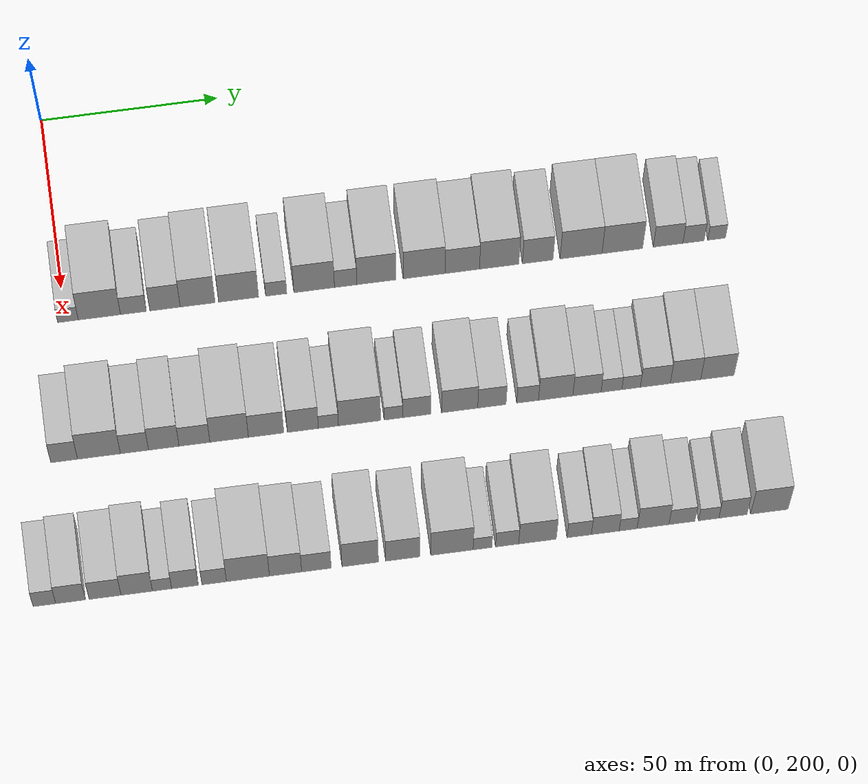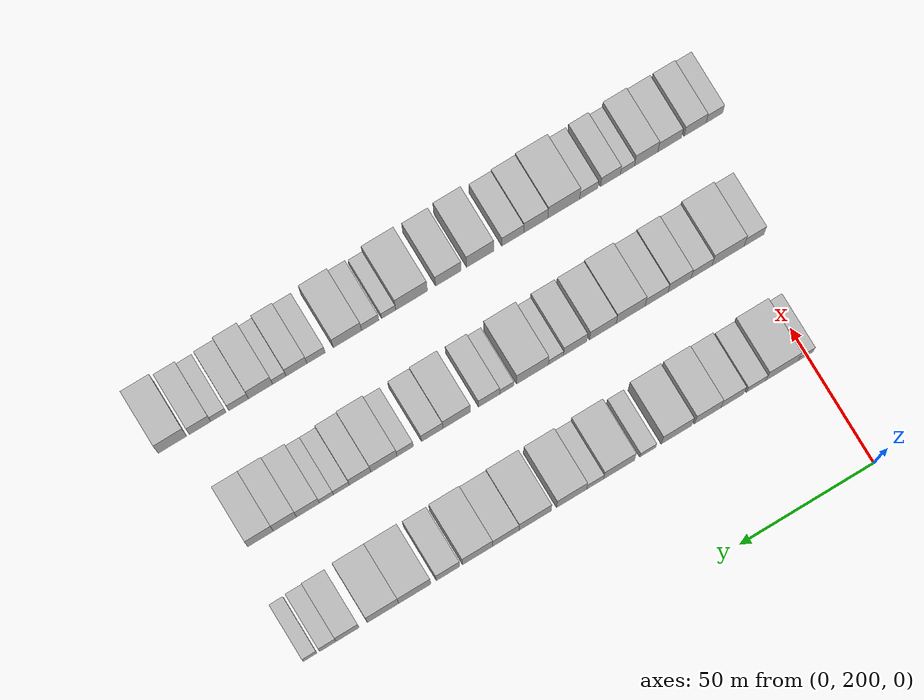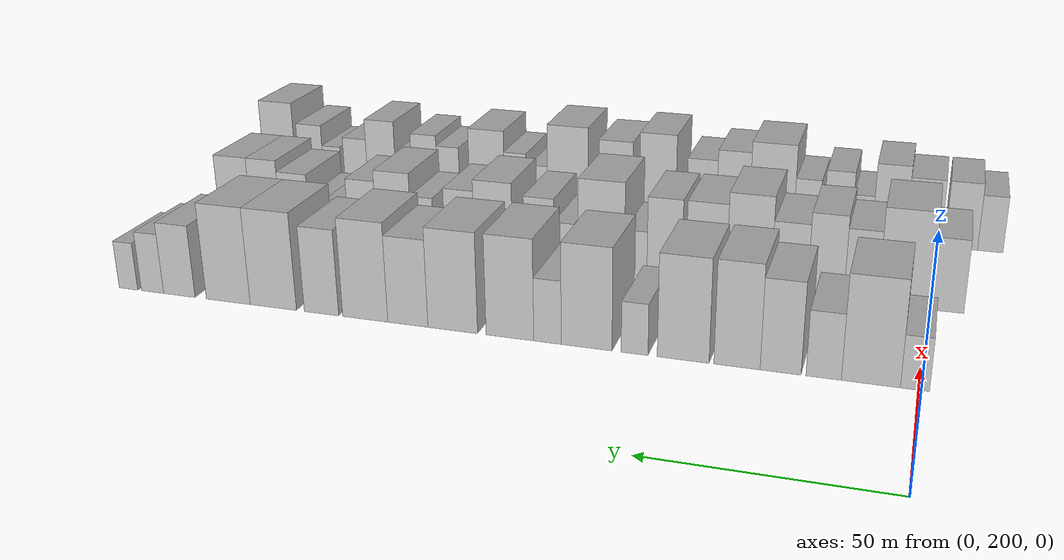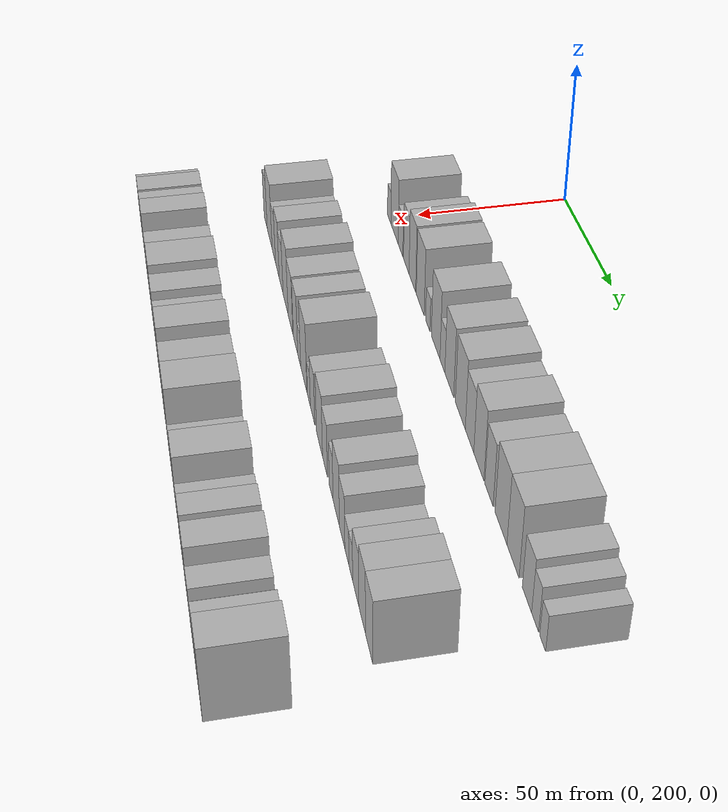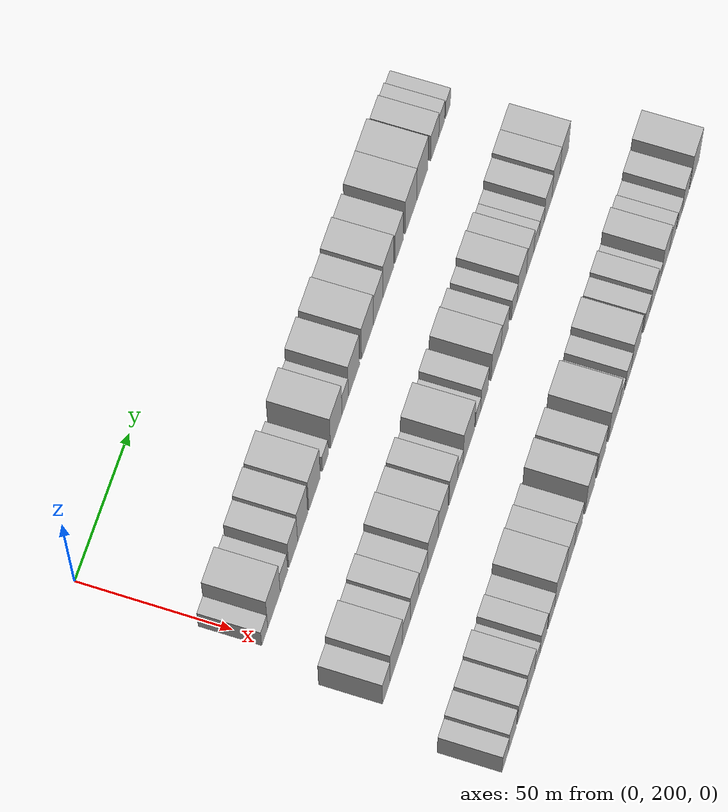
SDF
<sdf version="1.6">
 <world name="default">
  <model name="building_63">
   <static>1</static>
   <pose>50.0000 200.7948 0 0.000000 0.000000 0.000000</pose>
   <link name="link">
    <pose>0 0 6.00 0 0 0</pose>
    <collision name="collision"><geometry><box><size>20.0000 5.7654 12.0000</size></box></geometry></collision>
    <visual name="visual">
     <cast_shadows>0</cast_shadows>
     <geometry><box><size>20.0000 5.7654 12.0000</size></box></geometry>
     <material>
      <script>
       <uri>model://HANNAS_wall/materials/scripts</uri>
       <uri>model://HANNAS_wall/materials/textures</uri>
       <name>vrc/HANNAS_wall</name>
      </script>
     </material>
    </visual>
   </link>
  </model>
  <model name="building_64">
   <static>1</static>
   <pose>50.0000 209.6033 0 0.000000 0.000000 0.000000</pose>
   <link name="link">
    <pose>0 0 12.00 0 0 0</pose>
    <collision name="collision"><geometry><box><size>20.0000 11.8515 24.0000</size></box></geometry></collision>
    <visual name="visual">
     <cast_shadows>0</cast_shadows>
     <geometry><box><size>20.0000 11.8515 24.0000</size></box></geometry>
     <material>
      <script>
       <uri>model://HANNAS_wall/materials/scripts</uri>
       <uri>model://HANNAS_wall/materials/textures</uri>
       <name>vrc/HANNAS_wall</name>
      </script>
     </material>
    </visual>
   </link>
  </model>
  <model name="building_65">
   <static>1</static>
   <pose>50.0000 219.1424 0 0.000000 0.000000 0.000000</pose>
   <link name="link">
    <pose>0 0 7.50 0 0 0</pose>
    <collision name="collision"><geometry><box><size>20.0000 7.2268 15.0000</size></box></geometry></collision>
    <visual name="visual">
     <cast_shadows>0</cast_shadows>
     <geometry><box><size>20.0000 7.2268 15.0000</size></box></geometry>
     <material>
      <script>
       <uri>model://HANNAS_wall/materials/scripts</uri>
       <uri>model://HANNAS_wall/materials/textures</uri>
       <name>vrc/HANNAS_wall</name>
      </script>
     </material>
    </visual>
   </link>
  </model>
  <model name="building_66">
   <static>1</static>
   <pose>50.0000 228.0161 0 0.000000 0.000000 0.000000</pose>
   <link name="link">
    <pose>0 0 10.50 0 0 0</pose>
    <collision name="collision"><geometry><box><size>20.0000 8.5204 21.0000</size></box></geometry></collision>
    <visual name="visual">
     <cast_shadows>0</cast_shadows>
     <geometry><box><size>20.0000 8.5204 21.0000</size></box></geometry>
     <material>
      <script>
       <uri>model://HANNAS_wall/materials/scripts</uri>
       <uri>model://HANNAS_wall/materials/textures</uri>
       <name>vrc/HANNAS_wall</name>
      </script>
     </material>
    </visual>
   </link>
  </model>
  <model name="building_67">
   <static>1</static>
   <pose>50.0000 237.1684 0 0.000000 0.000000 0.000000</pose>
   <link name="link">
    <pose>0 0 12.00 0 0 0</pose>
    <collision name="collision"><geometry><box><size>20.0000 9.7842 24.0000</size></box></geometry></collision>
    <visual name="visual">
     <cast_shadows>0</cast_shadows>
     <geometry><box><size>20.0000 9.7842 24.0000</size></box></geometry>
     <material>
      <script>
       <uri>model://HANNAS_wall/materials/scripts</uri>
       <uri>model://HANNAS_wall/materials/textures</uri>
       <name>vrc/HANNAS_wall</name>
      </script>
     </material>
    </visual>
   </link>
  </model>
  <model name="building_68">
   <static>1</static>
   <pose>50.0000 248.6716 0 0.000000 0.000000 0.000000</pose>
   <link name="link">
    <pose>0 0 12.00 0 0 0</pose>
    <collision name="collision"><geometry><box><size>20.0000 11.2223 24.0000</size></box></geometry></collision>
    <visual name="visual">
     <cast_shadows>0</cast_shadows>
     <geometry><box><size>20.0000 11.2223 24.0000</size></box></geometry>
     <material>
      <script>
       <uri>model://HANNAS_wall/materials/scripts</uri>
       <uri>model://HANNAS_wall/materials/textures</uri>
       <name>vrc/HANNAS_wall</name>
      </script>
     </material>
    </visual>
   </link>
  </model>
  <model name="building_69">
   <static>1</static>
   <pose>50.0000 259.2494 0 0.000000 0.000000 0.000000</pose>
   <link name="link">
    <pose>0 0 6.00 0 0 0</pose>
    <collision name="collision"><geometry><box><size>20.0000 5.9333 12.0000</size></box></geometry></collision>
    <visual name="visual">
     <cast_shadows>0</cast_shadows>
     <geometry><box><size>20.0000 5.9333 12.0000</size></box></geometry>
     <material>
      <script>
       <uri>model://HANNAS_wall/materials/scripts</uri>
       <uri>model://HANNAS_wall/materials/textures</uri>
       <name>vrc/HANNAS_wall</name>
      </script>
     </material>
    </visual>
   </link>
  </model>
  <model name="building_70">
   <static>1</static>
   <pose>50.0000 269.9238 0 0.000000 0.000000 0.000000</pose>
   <link name="link">
    <pose>0 0 12.00 0 0 0</pose>
    <collision name="collision"><geometry><box><size>20.0000 11.4154 24.0000</size></box></geometry></collision>
    <visual name="visual">
     <cast_shadows>0</cast_shadows>
     <geometry><box><size>20.0000 11.4154 24.0000</size></box></geometry>
     <material>
      <script>
       <uri>model://HANNAS_wall/materials/scripts</uri>
       <uri>model://HANNAS_wall/materials/textures</uri>
       <name>vrc/HANNAS_wall</name>
      </script>
     </material>
    </visual>
   </link>
  </model>
  <model name="building_71">
   <static>1</static>
   <pose>50.0000 278.7712 0 0.000000 0.000000 0.000000</pose>
   <link name="link">
    <pose>0 0 7.50 0 0 0</pose>
    <collision name="collision"><geometry><box><size>20.0000 6.2793 15.0000</size></box></geometry></collision>
    <visual name="visual">
     <cast_shadows>0</cast_shadows>
     <geometry><box><size>20.0000 6.2793 15.0000</size></box></geometry>
     <material>
      <script>
       <uri>model://HANNAS_wall/materials/scripts</uri>
       <uri>model://HANNAS_wall/materials/textures</uri>
       <name>vrc/HANNAS_wall</name>
      </script>
     </material>
    </visual>
   </link>
  </model>
  <model name="building_72">
   <static>1</static>
   <pose>50.0000 287.4389 0 0.000000 0.000000 0.000000</pose>
   <link name="link">
    <pose>0 0 12.00 0 0 0</pose>
    <collision name="collision"><geometry><box><size>20.0000 11.0561 24.0000</size></box></geometry></collision>
    <visual name="visual">
     <cast_shadows>0</cast_shadows>
     <geometry><box><size>20.0000 11.0561 24.0000</size></box></geometry>
     <material>
      <script>
       <uri>model://HANNAS_wall/materials/scripts</uri>
       <uri>model://HANNAS_wall/materials/textures</uri>
       <name>vrc/HANNAS_wall</name>
      </script>
     </material>
    </visual>
   </link>
  </model>
  <model name="building_73">
   <static>1</static>
   <pose>50.0000 300.8716 0 0.000000 0.000000 0.000000</pose>
   <link name="link">
    <pose>0 0 12.00 0 0 0</pose>
    <collision name="collision"><geometry><box><size>20.0000 11.8092 24.0000</size></box></geometry></collision>
    <visual name="visual">
     <cast_shadows>0</cast_shadows>
     <geometry><box><size>20.0000 11.8092 24.0000</size></box></geometry>
     <material>
      <script>
       <uri>model://HANNAS_wall/materials/scripts</uri>
       <uri>model://HANNAS_wall/materials/textures</uri>
       <name>vrc/HANNAS_wall</name>
      </script>
     </material>
    </visual>
   </link>
  </model>
  <model name="building_74">
   <static>1</static>
   <pose>50.0000 311.6322 0 0.000000 0.000000 0.000000</pose>
   <link name="link">
    <pose>0 0 10.50 0 0 0</pose>
    <collision name="collision"><geometry><box><size>20.0000 9.7121 21.0000</size></box></geometry></collision>
    <visual name="visual">
     <cast_shadows>0</cast_shadows>
     <geometry><box><size>20.0000 9.7121 21.0000</size></box></geometry>
     <material>
      <script>
       <uri>model://HANNAS_wall/materials/scripts</uri>
       <uri>model://HANNAS_wall/materials/textures</uri>
       <name>vrc/HANNAS_wall</name>
      </script>
     </material>
    </visual>
   </link>
  </model>
  <model name="building_75">
   <static>1</static>
   <pose>50.0000 322.0391 0 0.000000 0.000000 0.000000</pose>
   <link name="link">
    <pose>0 0 12.00 0 0 0</pose>
    <collision name="collision"><geometry><box><size>20.0000 11.1015 24.0000</size></box></geometry></collision>
    <visual name="visual">
     <cast_shadows>0</cast_shadows>
     <geometry><box><size>20.0000 11.1015 24.0000</size></box></geometry>
     <material>
      <script>
       <uri>model://HANNAS_wall/materials/scripts</uri>
       <uri>model://HANNAS_wall/materials/textures</uri>
       <name>vrc/HANNAS_wall</name>
      </script>
     </material>
    </visual>
   </link>
  </model>
  <model name="building_76">
   <static>1</static>
   <pose>50.0000 332.9055 0 0.000000 0.000000 0.000000</pose>
   <link name="link">
    <pose>0 0 10.50 0 0 0</pose>
    <collision name="collision"><geometry><box><size>20.0000 8.6314 21.0000</size></box></geometry></collision>
    <visual name="visual">
     <cast_shadows>0</cast_shadows>
     <geometry><box><size>20.0000 8.6314 21.0000</size></box></geometry>
     <material>
      <script>
       <uri>model://HANNAS_wall/materials/scripts</uri>
       <uri>model://HANNAS_wall/materials/textures</uri>
       <name>vrc/HANNAS_wall</name>
      </script>
     </material>
    </visual>
   </link>
  </model>
  <model name="building_77">
   <static>1</static>
   <pose>50.0000 345.1486 0 0.000000 0.000000 0.000000</pose>
   <link name="link">
    <pose>0 0 12.00 0 0 0</pose>
    <collision name="collision"><geometry><box><size>20.0000 11.8547 24.0000</size></box></geometry></collision>
    <visual name="visual">
     <cast_shadows>0</cast_shadows>
     <geometry><box><size>20.0000 11.8547 24.0000</size></box></geometry>
     <material>
      <script>
       <uri>model://HANNAS_wall/materials/scripts</uri>
       <uri>model://HANNAS_wall/materials/textures</uri>
       <name>vrc/HANNAS_wall</name>
      </script>
     </material>
    </visual>
   </link>
  </model>
  <model name="building_78">
   <static>1</static>
   <pose>50.0000 356.8210 0 0.000000 0.000000 0.000000</pose>
   <link name="link">
    <pose>0 0 12.00 0 0 0</pose>
    <collision name="collision"><geometry><box><size>20.0000 11.4901 24.0000</size></box></geometry></collision>
    <visual name="visual">
     <cast_shadows>0</cast_shadows>
     <geometry><box><size>20.0000 11.4901 24.0000</size></box></geometry>
     <material>
      <script>
       <uri>model://HANNAS_wall/materials/scripts</uri>
       <uri>model://HANNAS_wall/materials/textures</uri>
       <name>vrc/HANNAS_wall</name>
      </script>
     </material>
    </visual>
   </link>
  </model>
  <model name="building_79">
   <static>1</static>
   <pose>50.0000 369.7659 0 0.000000 0.000000 0.000000</pose>
   <link name="link">
    <pose>0 0 9.00 0 0 0</pose>
    <collision name="collision"><geometry><box><size>20.0000 8.3997 18.0000</size></box></geometry></collision>
    <visual name="visual">
     <cast_shadows>0</cast_shadows>
     <geometry><box><size>20.0000 8.3997 18.0000</size></box></geometry>
     <material>
      <script>
       <uri>model://HANNAS_wall/materials/scripts</uri>
       <uri>model://HANNAS_wall/materials/textures</uri>
       <name>vrc/HANNAS_wall</name>
      </script>
     </material>
    </visual>
   </link>
  </model>
  <model name="building_80">
   <static>1</static>
   <pose>50.0000 376.9768 0 0.000000 0.000000 0.000000</pose>
   <link name="link">
    <pose>0 0 7.50 0 0 0</pose>
    <collision name="collision"><geometry><box><size>20.0000 6.0222 15.0000</size></box></geometry></collision>
    <visual name="visual">
     <cast_shadows>0</cast_shadows>
     <geometry><box><size>20.0000 6.0222 15.0000</size></box></geometry>
     <material>
      <script>
       <uri>model://HANNAS_wall/materials/scripts</uri>
       <uri>model://HANNAS_wall/materials/textures</uri>
       <name>vrc/HANNAS_wall</name>
      </script>
     </material>
    </visual>
   </link>
  </model>
  <model name="building_81">
   <static>1</static>
   <pose>50.0000 383.5068 0 0.000000 0.000000 0.000000</pose>
   <link name="link">
    <pose>0 0 6.00 0 0 0</pose>
    <collision name="collision"><geometry><box><size>20.0000 5.0378 12.0000</size></box></geometry></collision>
    <visual name="visual">
     <cast_shadows>0</cast_shadows>
     <geometry><box><size>20.0000 5.0378 12.0000</size></box></geometry>
     <material>
      <script>
       <uri>model://HANNAS_wall/materials/scripts</uri>
       <uri>model://HANNAS_wall/materials/textures</uri>
       <name>vrc/HANNAS_wall</name>
      </script>
     </material>
    </visual>
   </link>
  </model>
  <model name="building_144">
   <static>1</static>
   <pose>90.0000 195.2468 0 0.000000 0.000000 0.000000</pose>
   <link name="link">
    <pose>0 0 9.00 0 0 0</pose>
    <collision name="collision"><geometry><box><size>20.0000 7.4434 18.0000</size></box></geometry></collision>
    <visual name="visual">
     <cast_shadows>0</cast_shadows>
     <geometry><box><size>20.0000 7.4434 18.0000</size></box></geometry>
     <material>
      <script>
       <uri>model://HANNAS_wall/materials/scripts</uri>
       <uri>model://HANNAS_wall/materials/textures</uri>
       <name>vrc/HANNAS_wall</name>
      </script>
     </material>
    </visual>
   </link>
  </model>
  <model name="building_145">
   <static>1</static>
   <pose>90.0000 204.9188 0 0.000000 0.000000 0.000000</pose>
   <link name="link">
    <pose>0 0 12.00 0 0 0</pose>
    <collision name="collision"><geometry><box><size>20.0000 11.9006 24.0000</size></box></geometry></collision>
    <visual name="visual">
     <cast_shadows>0</cast_shadows>
     <geometry><box><size>20.0000 11.9006 24.0000</size></box></geometry>
     <material>
      <script>
       <uri>model://HANNAS_wall/materials/scripts</uri>
       <uri>model://HANNAS_wall/materials/textures</uri>
       <name>vrc/HANNAS_wall</name>
      </script>
     </material>
    </visual>
   </link>
  </model>
  <model name="building_146">
   <static>1</static>
   <pose>90.0000 214.7822 0 0.000000 0.000000 0.000000</pose>
   <link name="link">
    <pose>0 0 9.00 0 0 0</pose>
    <collision name="collision"><geometry><box><size>20.0000 7.8262 18.0000</size></box></geometry></collision>
    <visual name="visual">
     <cast_shadows>0</cast_shadows>
     <geometry><box><size>20.0000 7.8262 18.0000</size></box></geometry>
     <material>
      <script>
       <uri>model://HANNAS_wall/materials/scripts</uri>
       <uri>model://HANNAS_wall/materials/textures</uri>
       <name>vrc/HANNAS_wall</name>
      </script>
     </material>
    </visual>
   </link>
  </model>
  <model name="building_147">
   <static>1</static>
   <pose>90.0000 222.9404 0 0.000000 0.000000 0.000000</pose>
   <link name="link">
    <pose>0 0 10.50 0 0 0</pose>
    <collision name="collision"><geometry><box><size>20.0000 8.4902 21.0000</size></box></geometry></collision>
    <visual name="visual">
     <cast_shadows>0</cast_shadows>
     <geometry><box><size>20.0000 8.4902 21.0000</size></box></geometry>
     <material>
      <script>
       <uri>model://HANNAS_wall/materials/scripts</uri>
       <uri>model://HANNAS_wall/materials/textures</uri>
       <name>vrc/HANNAS_wall</name>
      </script>
     </material>
    </visual>
   </link>
  </model>
  <model name="building_148">
   <static>1</static>
   <pose>90.0000 231.4810 0 0.000000 0.000000 0.000000</pose>
   <link name="link">
    <pose>0 0 9.00 0 0 0</pose>
    <collision name="collision"><geometry><box><size>20.0000 8.5909 18.0000</size></box></geometry></collision>
    <visual name="visual">
     <cast_shadows>0</cast_shadows>
     <geometry><box><size>20.0000 8.5909 18.0000</size></box></geometry>
     <material>
      <script>
       <uri>model://HANNAS_wall/materials/scripts</uri>
       <uri>model://HANNAS_wall/materials/textures</uri>
       <name>vrc/HANNAS_wall</name>
      </script>
     </material>
    </visual>
   </link>
  </model>
  <model name="building_149">
   <static>1</static>
   <pose>90.0000 241.1373 0 0.000000 0.000000 0.000000</pose>
   <link name="link">
    <pose>0 0 12.00 0 0 0</pose>
    <collision name="collision"><geometry><box><size>20.0000 10.7218 24.0000</size></box></geometry></collision>
    <visual name="visual">
     <cast_shadows>0</cast_shadows>
     <geometry><box><size>20.0000 10.7218 24.0000</size></box></geometry>
     <material>
      <script>
       <uri>model://HANNAS_wall/materials/scripts</uri>
       <uri>model://HANNAS_wall/materials/textures</uri>
       <name>vrc/HANNAS_wall</name>
      </script>
     </material>
    </visual>
   </link>
  </model>
  <model name="building_150">
   <static>1</static>
   <pose>90.0000 251.4266 0 0.000000 0.000000 0.000000</pose>
   <link name="link">
    <pose>0 0 10.50 0 0 0</pose>
    <collision name="collision"><geometry><box><size>20.0000 9.8567 21.0000</size></box></geometry></collision>
    <visual name="visual">
     <cast_shadows>0</cast_shadows>
     <geometry><box><size>20.0000 9.8567 21.0000</size></box></geometry>
     <material>
      <script>
       <uri>model://HANNAS_wall/materials/scripts</uri>
       <uri>model://HANNAS_wall/materials/textures</uri>
       <name>vrc/HANNAS_wall</name>
      </script>
     </material>
    </visual>
   </link>
  </model>
  <model name="building_151">
   <static>1</static>
   <pose>90.0000 261.6745 0 0.000000 0.000000 0.000000</pose>
   <link name="link">
    <pose>0 0 10.50 0 0 0</pose>
    <collision name="collision"><geometry><box><size>20.0000 8.6392 21.0000</size></box></geometry></collision>
    <visual name="visual">
     <cast_shadows>0</cast_shadows>
     <geometry><box><size>20.0000 8.6392 21.0000</size></box></geometry>
     <material>
      <script>
       <uri>model://HANNAS_wall/materials/scripts</uri>
       <uri>model://HANNAS_wall/materials/textures</uri>
       <name>vrc/HANNAS_wall</name>
      </script>
     </material>
    </visual>
   </link>
  </model>
  <model name="building_152">
   <static>1</static>
   <pose>90.0000 268.7901 0 0.000000 0.000000 0.000000</pose>
   <link name="link">
    <pose>0 0 6.00 0 0 0</pose>
    <collision name="collision"><geometry><box><size>20.0000 5.5919 12.0000</size></box></geometry></collision>
    <visual name="visual">
     <cast_shadows>0</cast_shadows>
     <geometry><box><size>20.0000 5.5919 12.0000</size></box></geometry>
     <material>
      <script>
       <uri>model://HANNAS_wall/materials/scripts</uri>
       <uri>model://HANNAS_wall/materials/textures</uri>
       <name>vrc/HANNAS_wall</name>
      </script>
     </material>
    </visual>
   </link>
  </model>
  <model name="building_153">
   <static>1</static>
   <pose>90.0000 277.4646 0 0.000000 0.000000 0.000000</pose>
   <link name="link">
    <pose>0 0 12.00 0 0 0</pose>
    <collision name="collision"><geometry><box><size>20.0000 11.7570 24.0000</size></box></geometry></collision>
    <visual name="visual">
     <cast_shadows>0</cast_shadows>
     <geometry><box><size>20.0000 11.7570 24.0000</size></box></geometry>
     <material>
      <script>
       <uri>model://HANNAS_wall/materials/scripts</uri>
       <uri>model://HANNAS_wall/materials/textures</uri>
       <name>vrc/HANNAS_wall</name>
      </script>
     </material>
    </visual>
   </link>
  </model>
  <model name="building_154">
   <static>1</static>
   <pose>90.0000 286.9511 0 0.000000 0.000000 0.000000</pose>
   <link name="link">
    <pose>0 0 6.00 0 0 0</pose>
    <collision name="collision"><geometry><box><size>20.0000 5.2160 12.0000</size></box></geometry></collision>
    <visual name="visual">
     <cast_shadows>0</cast_shadows>
     <geometry><box><size>20.0000 5.2160 12.0000</size></box></geometry>
     <material>
      <script>
       <uri>model://HANNAS_wall/materials/scripts</uri>
       <uri>model://HANNAS_wall/materials/textures</uri>
       <name>vrc/HANNAS_wall</name>
      </script>
     </material>
    </visual>
   </link>
  </model>
  <model name="building_155">
   <static>1</static>
   <pose>90.0000 293.4682 0 0.000000 0.000000 0.000000</pose>
   <link name="link">
    <pose>0 0 9.00 0 0 0</pose>
    <collision name="collision"><geometry><box><size>20.0000 7.8182 18.0000</size></box></geometry></collision>
    <visual name="visual">
     <cast_shadows>0</cast_shadows>
     <geometry><box><size>20.0000 7.8182 18.0000</size></box></geometry>
     <material>
      <script>
       <uri>model://HANNAS_wall/materials/scripts</uri>
       <uri>model://HANNAS_wall/materials/textures</uri>
       <name>vrc/HANNAS_wall</name>
      </script>
     </material>
    </visual>
   </link>
  </model>
  <model name="building_156">
   <static>1</static>
   <pose>90.0000 305.4412 0 0.000000 0.000000 0.000000</pose>
   <link name="link">
    <pose>0 0 10.50 0 0 0</pose>
    <collision name="collision"><geometry><box><size>20.0000 10.1280 21.0000</size></box></geometry></collision>
    <visual name="visual">
     <cast_shadows>0</cast_shadows>
     <geometry><box><size>20.0000 10.1280 21.0000</size></box></geometry>
     <material>
      <script>
       <uri>model://HANNAS_wall/materials/scripts</uri>
       <uri>model://HANNAS_wall/materials/textures</uri>
       <name>vrc/HANNAS_wall</name>
      </script>
     </material>
    </visual>
   </link>
  </model>
  <model name="building_157">
   <static>1</static>
   <pose>90.0000 314.4631 0 0.000000 0.000000 0.000000</pose>
   <link name="link">
    <pose>0 0 9.00 0 0 0</pose>
    <collision name="collision"><geometry><box><size>20.0000 7.9158 18.0000</size></box></geometry></collision>
    <visual name="visual">
     <cast_shadows>0</cast_shadows>
     <geometry><box><size>20.0000 7.9158 18.0000</size></box></geometry>
     <material>
      <script>
       <uri>model://HANNAS_wall/materials/scripts</uri>
       <uri>model://HANNAS_wall/materials/textures</uri>
       <name>vrc/HANNAS_wall</name>
      </script>
     </material>
    </visual>
   </link>
  </model>
  <model name="building_158">
   <static>1</static>
   <pose>90.0000 324.4519 0 0.000000 0.000000 0.000000</pose>
   <link name="link">
    <pose>0 0 7.50 0 0 0</pose>
    <collision name="collision"><geometry><box><size>20.0000 6.0619 15.0000</size></box></geometry></collision>
    <visual name="visual">
     <cast_shadows>0</cast_shadows>
     <geometry><box><size>20.0000 6.0619 15.0000</size></box></geometry>
     <material>
      <script>
       <uri>model://HANNAS_wall/materials/scripts</uri>
       <uri>model://HANNAS_wall/materials/textures</uri>
       <name>vrc/HANNAS_wall</name>
      </script>
     </material>
    </visual>
   </link>
  </model>
  <model name="building_159">
   <static>1</static>
   <pose>90.0000 332.3024 0 0.000000 0.000000 0.000000</pose>
   <link name="link">
    <pose>0 0 10.50 0 0 0</pose>
    <collision name="collision"><geometry><box><size>20.0000 9.6391 21.0000</size></box></geometry></collision>
    <visual name="visual">
     <cast_shadows>0</cast_shadows>
     <geometry><box><size>20.0000 9.6391 21.0000</size></box></geometry>
     <material>
      <script>
       <uri>model://HANNAS_wall/materials/scripts</uri>
       <uri>model://HANNAS_wall/materials/textures</uri>
       <name>vrc/HANNAS_wall</name>
      </script>
     </material>
    </visual>
   </link>
  </model>
  <model name="building_160">
   <static>1</static>
   <pose>90.0000 341.0621 0 0.000000 0.000000 0.000000</pose>
   <link name="link">
    <pose>0 0 9.00 0 0 0</pose>
    <collision name="collision"><geometry><box><size>20.0000 7.8801 18.0000</size></box></geometry></collision>
    <visual name="visual">
     <cast_shadows>0</cast_shadows>
     <geometry><box><size>20.0000 7.8801 18.0000</size></box></geometry>
     <material>
      <script>
       <uri>model://HANNAS_wall/materials/scripts</uri>
       <uri>model://HANNAS_wall/materials/textures</uri>
       <name>vrc/HANNAS_wall</name>
      </script>
     </material>
    </visual>
   </link>
  </model>
  <model name="building_161">
   <static>1</static>
   <pose>90.0000 347.9253 0 0.000000 0.000000 0.000000</pose>
   <link name="link">
    <pose>0 0 6.00 0 0 0</pose>
    <collision name="collision"><geometry><box><size>20.0000 5.8463 12.0000</size></box></geometry></collision>
    <visual name="visual">
     <cast_shadows>0</cast_shadows>
     <geometry><box><size>20.0000 5.8463 12.0000</size></box></geometry>
     <material>
      <script>
       <uri>model://HANNAS_wall/materials/scripts</uri>
       <uri>model://HANNAS_wall/materials/textures</uri>
       <name>vrc/HANNAS_wall</name>
      </script>
     </material>
    </visual>
   </link>
  </model>
  <model name="building_162">
   <static>1</static>
   <pose>90.0000 353.4362 0 0.000000 0.000000 0.000000</pose>
   <link name="link">
    <pose>0 0 6.00 0 0 0</pose>
    <collision name="collision"><geometry><box><size>20.0000 5.1756 12.0000</size></box></geometry></collision>
    <visual name="visual">
     <cast_shadows>0</cast_shadows>
     <geometry><box><size>20.0000 5.1756 12.0000</size></box></geometry>
     <material>
      <script>
       <uri>model://HANNAS_wall/materials/scripts</uri>
       <uri>model://HANNAS_wall/materials/textures</uri>
       <name>vrc/HANNAS_wall</name>
      </script>
     </material>
    </visual>
   </link>
  </model>
  <model name="building_163">
   <static>1</static>
   <pose>90.0000 360.2272 0 0.000000 0.000000 0.000000</pose>
   <link name="link">
    <pose>0 0 9.00 0 0 0</pose>
    <collision name="collision"><geometry><box><size>20.0000 8.4065 18.0000</size></box></geometry></collision>
    <visual name="visual">
     <cast_shadows>0</cast_shadows>
     <geometry><box><size>20.0000 8.4065 18.0000</size></box></geometry>
     <material>
      <script>
       <uri>model://HANNAS_wall/materials/scripts</uri>
       <uri>model://HANNAS_wall/materials/textures</uri>
       <name>vrc/HANNAS_wall</name>
      </script>
     </material>
    </visual>
   </link>
  </model>
  <model name="building_164">
   <static>1</static>
   <pose>90.0000 368.6863 0 0.000000 0.000000 0.000000</pose>
   <link name="link">
    <pose>0 0 10.50 0 0 0</pose>
    <collision name="collision"><geometry><box><size>20.0000 8.5117 21.0000</size></box></geometry></collision>
    <visual name="visual">
     <cast_shadows>0</cast_shadows>
     <geometry><box><size>20.0000 8.5117 21.0000</size></box></geometry>
     <material>
      <script>
       <uri>model://HANNAS_wall/materials/scripts</uri>
       <uri>model://HANNAS_wall/materials/textures</uri>
       <name>vrc/HANNAS_wall</name>
      </script>
     </material>
    </visual>
   </link>
  </model>
  <model name="building_165">
   <static>1</static>
   <pose>90.0000 377.6311 0 0.000000 0.000000 0.000000</pose>
   <link name="link">
    <pose>0 0 10.50 0 0 0</pose>
    <collision name="collision"><geometry><box><size>20.0000 9.3778 21.0000</size></box></geometry></collision>
    <visual name="visual">
     <cast_shadows>0</cast_shadows>
     <geometry><box><size>20.0000 9.3778 21.0000</size></box></geometry>
     <material>
      <script>
       <uri>model://HANNAS_wall/materials/scripts</uri>
       <uri>model://HANNAS_wall/materials/textures</uri>
       <name>vrc/HANNAS_wall</name>
      </script>
     </material>
    </visual>
   </link>
  </model>
  <model name="building_235">
   <static>1</static>
   <pose>130.0000 185.3327 0 0.000000 0.000000 0.000000</pose>
   <link name="link">
    <pose>0 0 7.50 0 0 0</pose>
    <collision name="collision"><geometry><box><size>20.0000 6.2523 15.0000</size></box></geometry></collision>
    <visual name="visual">
     <cast_shadows>0</cast_shadows>
     <geometry><box><size>20.0000 6.2523 15.0000</size></box></geometry>
     <material>
      <script>
       <uri>model://HANNAS_wall/materials/scripts</uri>
       <uri>model://HANNAS_wall/materials/textures</uri>
       <name>vrc/HANNAS_wall</name>
      </script>
     </material>
    </visual>
   </link>
  </model>
  <model name="building_236">
   <static>1</static>
   <pose>130.0000 192.5434 0 0.000000 0.000000 0.000000</pose>
   <link name="link">
    <pose>0 0 9.00 0 0 0</pose>
    <collision name="collision"><geometry><box><size>20.0000 8.1691 18.0000</size></box></geometry></collision>
    <visual name="visual">
     <cast_shadows>0</cast_shadows>
     <geometry><box><size>20.0000 8.1691 18.0000</size></box></geometry>
     <material>
      <script>
       <uri>model://HANNAS_wall/materials/scripts</uri>
       <uri>model://HANNAS_wall/materials/textures</uri>
       <name>vrc/HANNAS_wall</name>
      </script>
     </material>
    </visual>
   </link>
  </model>
  <model name="building_237">
   <static>1</static>
   <pose>130.0000 202.0279 0 0.000000 0.000000 0.000000</pose>
   <link name="link">
    <pose>0 0 9.00 0 0 0</pose>
    <collision name="collision"><geometry><box><size>20.0000 8.7998 18.0000</size></box></geometry></collision>
    <visual name="visual">
     <cast_shadows>0</cast_shadows>
     <geometry><box><size>20.0000 8.7998 18.0000</size></box></geometry>
     <material>
      <script>
       <uri>model://HANNAS_wall/materials/scripts</uri>
       <uri>model://HANNAS_wall/materials/textures</uri>
       <name>vrc/HANNAS_wall</name>
      </script>
     </material>
    </visual>
   </link>
  </model>
  <model name="building_238">
   <static>1</static>
   <pose>130.0000 210.7650 0 0.000000 0.000000 0.000000</pose>
   <link name="link">
    <pose>0 0 10.50 0 0 0</pose>
    <collision name="collision"><geometry><box><size>20.0000 8.6744 21.0000</size></box></geometry></collision>
    <visual name="visual">
     <cast_shadows>0</cast_shadows>
     <geometry><box><size>20.0000 8.6744 21.0000</size></box></geometry>
     <material>
      <script>
       <uri>model://HANNAS_wall/materials/scripts</uri>
       <uri>model://HANNAS_wall/materials/textures</uri>
       <name>vrc/HANNAS_wall</name>
      </script>
     </material>
    </visual>
   </link>
  </model>
  <model name="building_239">
   <static>1</static>
   <pose>130.0000 217.7426 0 0.000000 0.000000 0.000000</pose>
   <link name="link">
    <pose>0 0 6.00 0 0 0</pose>
    <collision name="collision"><geometry><box><size>20.0000 5.2808 12.0000</size></box></geometry></collision>
    <visual name="visual">
     <cast_shadows>0</cast_shadows>
     <geometry><box><size>20.0000 5.2808 12.0000</size></box></geometry>
     <material>
      <script>
       <uri>model://HANNAS_wall/materials/scripts</uri>
       <uri>model://HANNAS_wall/materials/textures</uri>
       <name>vrc/HANNAS_wall</name>
      </script>
     </material>
    </visual>
   </link>
  </model>
  <model name="building_240">
   <static>1</static>
   <pose>130.0000 224.0618 0 0.000000 0.000000 0.000000</pose>
   <link name="link">
    <pose>0 0 9.00 0 0 0</pose>
    <collision name="collision"><geometry><box><size>20.0000 7.3576 18.0000</size></box></geometry></collision>
    <visual name="visual">
     <cast_shadows>0</cast_shadows>
     <geometry><box><size>20.0000 7.3576 18.0000</size></box></geometry>
     <material>
      <script>
       <uri>model://HANNAS_wall/materials/scripts</uri>
       <uri>model://HANNAS_wall/materials/textures</uri>
       <name>vrc/HANNAS_wall</name>
      </script>
     </material>
    </visual>
   </link>
  </model>
  <model name="building_241">
   <static>1</static>
   <pose>130.0000 232.1335 0 0.000000 0.000000 0.000000</pose>
   <link name="link">
    <pose>0 0 7.50 0 0 0</pose>
    <collision name="collision"><geometry><box><size>20.0000 6.7857 15.0000</size></box></geometry></collision>
    <visual name="visual">
     <cast_shadows>0</cast_shadows>
     <geometry><box><size>20.0000 6.7857 15.0000</size></box></geometry>
     <material>
      <script>
       <uri>model://HANNAS_wall/materials/scripts</uri>
       <uri>model://HANNAS_wall/materials/textures</uri>
       <name>vrc/HANNAS_wall</name>
      </script>
     </material>
    </visual>
   </link>
  </model>
  <model name="building_242">
   <static>1</static>
   <pose>130.0000 241.4464 0 0.000000 0.000000 0.000000</pose>
   <link name="link">
    <pose>0 0 12.00 0 0 0</pose>
    <collision name="collision"><geometry><box><size>20.0000 11.8402 24.0000</size></box></geometry></collision>
    <visual name="visual">
     <cast_shadows>0</cast_shadows>
     <geometry><box><size>20.0000 11.8402 24.0000</size></box></geometry>
     <material>
      <script>
       <uri>model://HANNAS_wall/materials/scripts</uri>
       <uri>model://HANNAS_wall/materials/textures</uri>
       <name>vrc/HANNAS_wall</name>
      </script>
     </material>
    </visual>
   </link>
  </model>
  <model name="building_243">
   <static>1</static>
   <pose>130.0000 251.8218 0 0.000000 0.000000 0.000000</pose>
   <link name="link">
    <pose>0 0 10.50 0 0 0</pose>
    <collision name="collision"><geometry><box><size>20.0000 8.9106 21.0000</size></box></geometry></collision>
    <visual name="visual">
     <cast_shadows>0</cast_shadows>
     <geometry><box><size>20.0000 8.9106 21.0000</size></box></geometry>
     <material>
      <script>
       <uri>model://HANNAS_wall/materials/scripts</uri>
       <uri>model://HANNAS_wall/materials/textures</uri>
       <name>vrc/HANNAS_wall</name>
      </script>
     </material>
    </visual>
   </link>
  </model>
  <model name="building_244">
   <static>1</static>
   <pose>130.0000 260.3522 0 0.000000 0.000000 0.000000</pose>
   <link name="link">
    <pose>0 0 9.00 0 0 0</pose>
    <collision name="collision"><geometry><box><size>20.0000 8.1503 18.0000</size></box></geometry></collision>
    <visual name="visual">
     <cast_shadows>0</cast_shadows>
     <geometry><box><size>20.0000 8.1503 18.0000</size></box></geometry>
     <material>
      <script>
       <uri>model://HANNAS_wall/materials/scripts</uri>
       <uri>model://HANNAS_wall/materials/textures</uri>
       <name>vrc/HANNAS_wall</name>
      </script>
     </material>
    </visual>
   </link>
  </model>
  <model name="building_245">
   <static>1</static>
   <pose>130.0000 272.4599 0 0.000000 0.000000 0.000000</pose>
   <link name="link">
    <pose>0 0 12.00 0 0 0</pose>
    <collision name="collision"><geometry><box><size>20.0000 10.0650 24.0000</size></box></geometry></collision>
    <visual name="visual">
     <cast_shadows>0</cast_shadows>
     <geometry><box><size>20.0000 10.0650 24.0000</size></box></geometry>
     <material>
      <script>
       <uri>model://HANNAS_wall/materials/scripts</uri>
       <uri>model://HANNAS_wall/materials/textures</uri>
       <name>vrc/HANNAS_wall</name>
      </script>
     </material>
    </visual>
   </link>
  </model>
  <model name="building_246">
   <static>1</static>
   <pose>130.0000 284.2449 0 0.000000 0.000000 0.000000</pose>
   <link name="link">
    <pose>0 0 10.50 0 0 0</pose>
    <collision name="collision"><geometry><box><size>20.0000 9.5050 21.0000</size></box></geometry></collision>
    <visual name="visual">
     <cast_shadows>0</cast_shadows>
     <geometry><box><size>20.0000 9.5050 21.0000</size></box></geometry>
     <material>
      <script>
       <uri>model://HANNAS_wall/materials/scripts</uri>
       <uri>model://HANNAS_wall/materials/textures</uri>
       <name>vrc/HANNAS_wall</name>
      </script>
     </material>
    </visual>
   </link>
  </model>
  <model name="building_247">
   <static>1</static>
   <pose>130.0000 297.8527 0 0.000000 0.000000 0.000000</pose>
   <link name="link">
    <pose>0 0 12.00 0 0 0</pose>
    <collision name="collision"><geometry><box><size>20.0000 11.7107 24.0000</size></box></geometry></collision>
    <visual name="visual">
     <cast_shadows>0</cast_shadows>
     <geometry><box><size>20.0000 11.7107 24.0000</size></box></geometry>
     <material>
      <script>
       <uri>model://HANNAS_wall/materials/scripts</uri>
       <uri>model://HANNAS_wall/materials/textures</uri>
       <name>vrc/HANNAS_wall</name>
      </script>
     </material>
    </visual>
   </link>
  </model>
  <model name="building_248">
   <static>1</static>
   <pose>130.0000 306.3277 0 0.000000 0.000000 0.000000</pose>
   <link name="link">
    <pose>0 0 6.00 0 0 0</pose>
    <collision name="collision"><geometry><box><size>20.0000 5.2392 12.0000</size></box></geometry></collision>
    <visual name="visual">
     <cast_shadows>0</cast_shadows>
     <geometry><box><size>20.0000 5.2392 12.0000</size></box></geometry>
     <material>
      <script>
       <uri>model://HANNAS_wall/materials/scripts</uri>
       <uri>model://HANNAS_wall/materials/textures</uri>
       <name>vrc/HANNAS_wall</name>
      </script>
     </material>
    </visual>
   </link>
  </model>
  <model name="building_249">
   <static>1</static>
   <pose>130.0000 313.1534 0 0.000000 0.000000 0.000000</pose>
   <link name="link">
    <pose>0 0 7.50 0 0 0</pose>
    <collision name="collision"><geometry><box><size>20.0000 6.4121 15.0000</size></box></geometry></collision>
    <visual name="visual">
     <cast_shadows>0</cast_shadows>
     <geometry><box><size>20.0000 6.4121 15.0000</size></box></geometry>
     <material>
      <script>
       <uri>model://HANNAS_wall/materials/scripts</uri>
       <uri>model://HANNAS_wall/materials/textures</uri>
       <name>vrc/HANNAS_wall</name>
      </script>
     </material>
    </visual>
   </link>
  </model>
  <model name="building_250">
   <static>1</static>
   <pose>130.0000 321.5739 0 0.000000 0.000000 0.000000</pose>
   <link name="link">
    <pose>0 0 10.50 0 0 0</pose>
    <collision name="collision"><geometry><box><size>20.0000 10.4289 21.0000</size></box></geometry></collision>
    <visual name="visual">
     <cast_shadows>0</cast_shadows>
     <geometry><box><size>20.0000 10.4289 21.0000</size></box></geometry>
     <material>
      <script>
       <uri>model://HANNAS_wall/materials/scripts</uri>
       <uri>model://HANNAS_wall/materials/textures</uri>
       <name>vrc/HANNAS_wall</name>
      </script>
     </material>
    </visual>
   </link>
  </model>
  <model name="building_251">
   <static>1</static>
   <pose>130.0000 333.1523 0 0.000000 0.000000 0.000000</pose>
   <link name="link">
    <pose>0 0 7.50 0 0 0</pose>
    <collision name="collision"><geometry><box><size>20.0000 6.7279 15.0000</size></box></geometry></collision>
    <visual name="visual">
     <cast_shadows>0</cast_shadows>
     <geometry><box><size>20.0000 6.7279 15.0000</size></box></geometry>
     <material>
      <script>
       <uri>model://HANNAS_wall/materials/scripts</uri>
       <uri>model://HANNAS_wall/materials/textures</uri>
       <name>vrc/HANNAS_wall</name>
      </script>
     </material>
    </visual>
   </link>
  </model>
  <model name="building_252">
   <static>1</static>
   <pose>130.0000 340.3720 0 0.000000 0.000000 0.000000</pose>
   <link name="link">
    <pose>0 0 9.00 0 0 0</pose>
    <collision name="collision"><geometry><box><size>20.0000 7.7116 18.0000</size></box></geometry></collision>
    <visual name="visual">
     <cast_shadows>0</cast_shadows>
     <geometry><box><size>20.0000 7.7116 18.0000</size></box></geometry>
     <material>
      <script>
       <uri>model://HANNAS_wall/materials/scripts</uri>
       <uri>model://HANNAS_wall/materials/textures</uri>
       <name>vrc/HANNAS_wall</name>
      </script>
     </material>
    </visual>
   </link>
  </model>
  <model name="building_253">
   <static>1</static>
   <pose>130.0000 346.7185 0 0.000000 0.000000 0.000000</pose>
   <link name="link">
    <pose>0 0 6.00 0 0 0</pose>
    <collision name="collision"><geometry><box><size>20.0000 4.9816 12.0000</size></box></geometry></collision>
    <visual name="visual">
     <cast_shadows>0</cast_shadows>
     <geometry><box><size>20.0000 4.9816 12.0000</size></box></geometry>
     <material>
      <script>
       <uri>model://HANNAS_wall/materials/scripts</uri>
       <uri>model://HANNAS_wall/materials/textures</uri>
       <name>vrc/HANNAS_wall</name>
      </script>
     </material>
    </visual>
   </link>
  </model>
  <model name="building_254">
   <static>1</static>
   <pose>130.0000 353.6443 0 0.000000 0.000000 0.000000</pose>
   <link name="link">
    <pose>0 0 10.50 0 0 0</pose>
    <collision name="collision"><geometry><box><size>20.0000 8.8699 21.0000</size></box></geometry></collision>
    <visual name="visual">
     <cast_shadows>0</cast_shadows>
     <geometry><box><size>20.0000 8.8699 21.0000</size></box></geometry>
     <material>
      <script>
       <uri>model://HANNAS_wall/materials/scripts</uri>
       <uri>model://HANNAS_wall/materials/textures</uri>
       <name>vrc/HANNAS_wall</name>
      </script>
     </material>
    </visual>
   </link>
  </model>
  <model name="building_255">
   <static>1</static>
   <pose>130.0000 361.6940 0 0.000000 0.000000 0.000000</pose>
   <link name="link">
    <pose>0 0 7.50 0 0 0</pose>
    <collision name="collision"><geometry><box><size>20.0000 7.2296 15.0000</size></box></geometry></collision>
    <visual name="visual">
     <cast_shadows>0</cast_shadows>
     <geometry><box><size>20.0000 7.2296 15.0000</size></box></geometry>
     <material>
      <script>
       <uri>model://HANNAS_wall/materials/scripts</uri>
       <uri>model://HANNAS_wall/materials/textures</uri>
       <name>vrc/HANNAS_wall</name>
      </script>
     </material>
    </visual>
   </link>
  </model>
  <model name="building_256">
   <static>1</static>
   <pose>130.0000 369.1325 0 0.000000 0.000000 0.000000</pose>
   <link name="link">
    <pose>0 0 6.00 0 0 0</pose>
    <collision name="collision"><geometry><box><size>20.0000 5.6474 12.0000</size></box></geometry></collision>
    <visual name="visual">
     <cast_shadows>0</cast_shadows>
     <geometry><box><size>20.0000 5.6474 12.0000</size></box></geometry>
     <material>
      <script>
       <uri>model://HANNAS_wall/materials/scripts</uri>
       <uri>model://HANNAS_wall/materials/textures</uri>
       <name>vrc/HANNAS_wall</name>
      </script>
     </material>
    </visual>
   </link>
  </model>
  <model name="building_257">
   <static>1</static>
   <pose>130.0000 375.8802 0 0.000000 0.000000 0.000000</pose>
   <link name="link">
    <pose>0 0 9.00 0 0 0</pose>
    <collision name="collision"><geometry><box><size>20.0000 7.8480 18.0000</size></box></geometry></collision>
    <visual name="visual">
     <cast_shadows>0</cast_shadows>
     <geometry><box><size>20.0000 7.8480 18.0000</size></box></geometry>
     <material>
      <script>
       <uri>model://HANNAS_wall/materials/scripts</uri>
       <uri>model://HANNAS_wall/materials/textures</uri>
       <name>vrc/HANNAS_wall</name>
      </script>
     </material>
    </visual>
   </link>
  </model>
  <model name="building_258">
   <static>1</static>
   <pose>130.0000 386.0103 0 0.000000 0.000000 0.000000</pose>
   <link name="link">
    <pose>0 0 12.00 0 0 0</pose>
    <collision name="collision"><geometry><box><size>20.0000 10.4122 24.0000</size></box></geometry></collision>
    <visual name="visual">
     <cast_shadows>0</cast_shadows>
     <geometry><box><size>20.0000 10.4122 24.0000</size></box></geometry>
     <material>
      <script>
       <uri>model://HANNAS_wall/materials/scripts</uri>
       <uri>model://HANNAS_wall/materials/textures</uri>
       <name>vrc/HANNAS_wall</name>
      </script>
     </material>
    </visual>
   </link>
  </model>
 </world>
</sdf>
